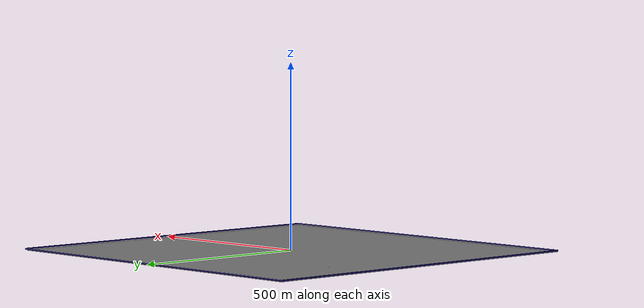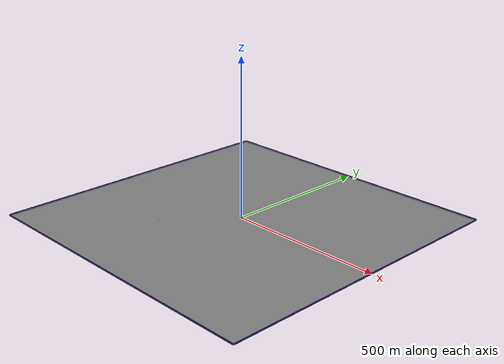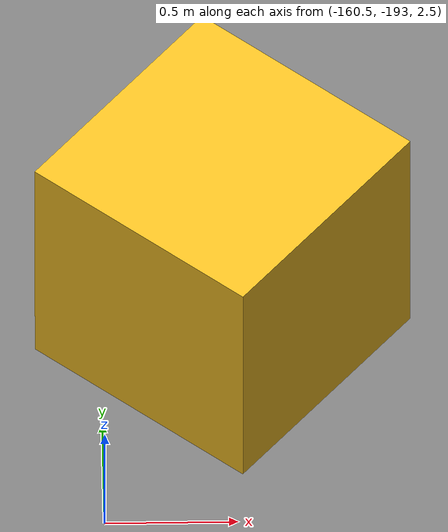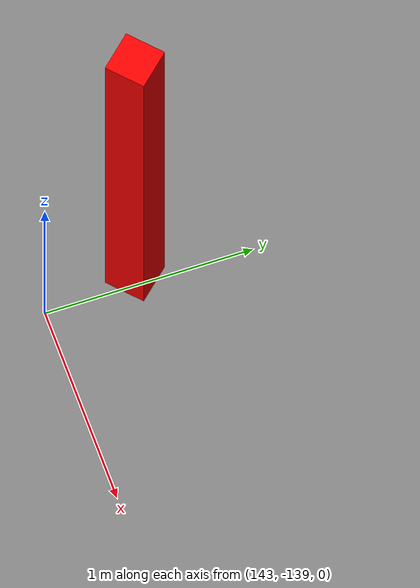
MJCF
<mujoco model="unnamed_model">
  <default>
    <default class="/" />
    <default class="border/" />
    <default class="border_1/" />
    <default class="border_2/" />
    <default class="border_3/" />
    <default class="agentplaceholder/" />
    <default class="placeholder_box/" />
    <default class="stone0/" />
    <default class="stone1/" />
    <default class="tree/" />
    <default class="tree_1/" />
  </default>
  <worldbody>
    <body name="border/">
      <body name="border/border" pos="0 501 2">
        <geom name="border/border_geom" class="border/" type="box" size="500 1 2" rgba="0.035000000000000003 0.016 0.28999999999999998 1" />
      </body>
    </body>
    <body name="border_1/">
      <body name="border_1/border" pos="0 -501 2">
        <geom name="border_1/border_geom" class="border_1/" type="box" size="500 1 2" rgba="0.035000000000000003 0.016 0.28999999999999998 1" />
      </body>
    </body>
    <body name="border_2/">
      <body name="border_2/border" pos="501 0 2">
        <geom name="border_2/border_geom" class="border_2/" type="box" size="1 500 2" rgba="0.035000000000000003 0.016 0.28999999999999998 1" />
      </body>
    </body>
    <body name="border_3/">
      <body name="border_3/border" pos="-501 0 2">
        <geom name="border_3/border_geom" class="border_3/" type="box" size="1 500 2" rgba="0.035000000000000003 0.016 0.28999999999999998 1" />
      </body>
    </body>
    <body euler="0 0 50.195332444022" name="agentplaceholder/">
      <joint name="agentplaceholder/boxagent_freeJoint/" class="/" type="free" />
      <body name="agentplaceholder/agentplaceholder" pos="-250 0 3" euler="0 0 0">
        <geom name="agentplaceholder/boxagent_geom" class="agentplaceholder/" type="box" size="0.5 0.5 0.5" rgba="0.94899999999999995 0.74509999999999998 0.1333 1" euler="0 0 0" />
      </body>
    </body>
    <body name="placeholder_box/">
      <body name="placeholder_box/placeholder_box" pos="-353.58050000000003 201.20039999999995 0.5" euler="0 0 -0.35890757365001491">
        <geom name="placeholder_box/box_geom" class="placeholder_box/" type="box" size="0.5 0.5 0.5" rgba="0.94899999999999995 0.74509999999999998 0.1333 1" euler="0 0 0" />
      </body>
    </body>
    <body name="stone0/">
      <body name="stone0/stone0" pos="132.30195000000001 458.71839999999997 0.10000000000000001" euler="0 0 176.20198786350818">
        <geom name="stone0/stone_geom" class="stone0/" type="box" size="0.10000000000000001 0.10000000000000001 2" rgba="1 0 0 1" />
      </body>
    </body>
    <body name="stone1/">
      <body name="stone1/stone1" pos="142.9444 -138.54730000000001 0.10000000000000001" euler="0 0 -137.73867556881947">
        <geom name="stone1/stone_geom" class="stone1/" type="box" size="0.10000000000000001 0.10000000000000001 2" rgba="1 0 0 1" />
      </body>
    </body>
    <body name="tree/">
      <body name="tree/tree" pos="297.17234999999999 283.44039999999995 0.10000000000000001" euler="0 0 18.158789231862784">
        <geom name="tree/tree_geom" class="tree/" type="box" size="0.10000000000000001 0.10000000000000001 2" rgba="1 0 0 1" />
      </body>
    </body>
    <body name="tree_1/">
      <body name="tree_1/tree" pos="172.57850000000002 -206.5754 0.10000000000000001" euler="0 0 121.56492913554843">
        <geom name="tree_1/tree_geom" class="tree_1/" type="box" size="0.10000000000000001 0.10000000000000001 2" rgba="1 0 0 1" />
      </body>
    </body>
    <geom name="base_plane" class="/" type="plane" size="500 500 0.10000000000000001" />
  </worldbody>
</mujoco>
